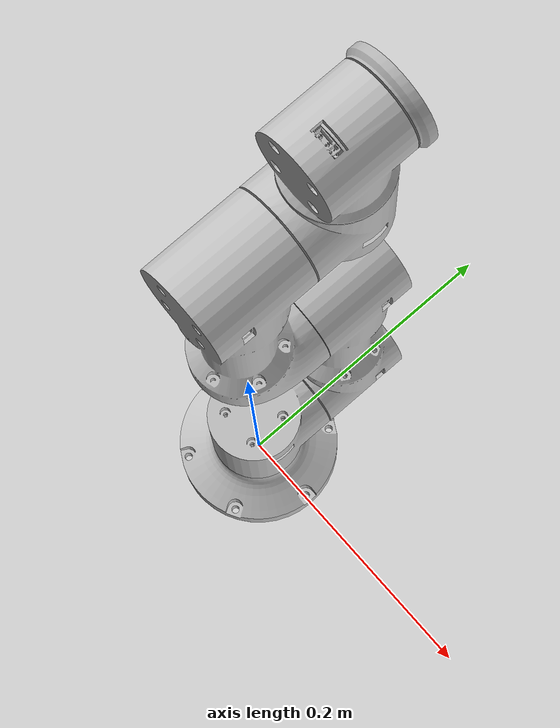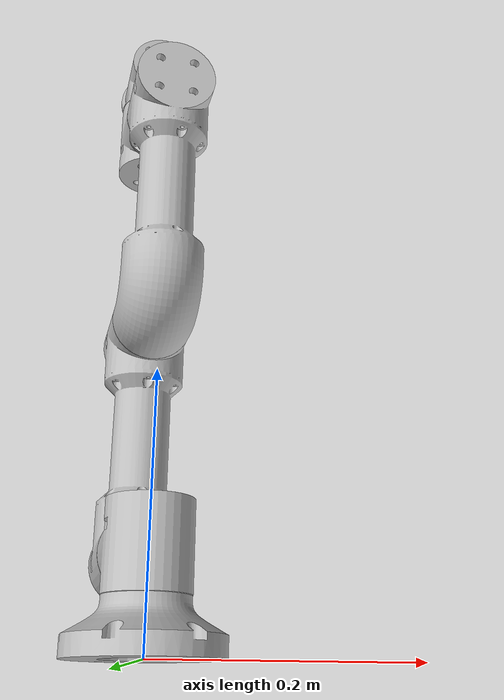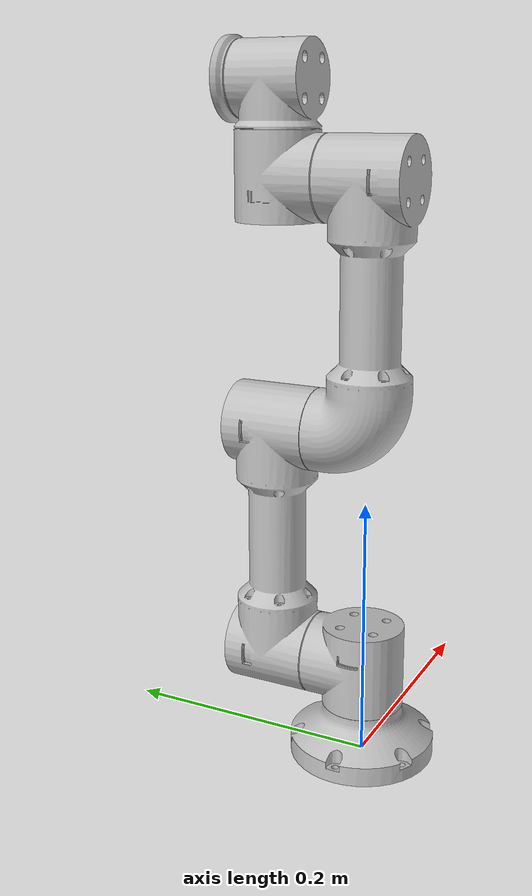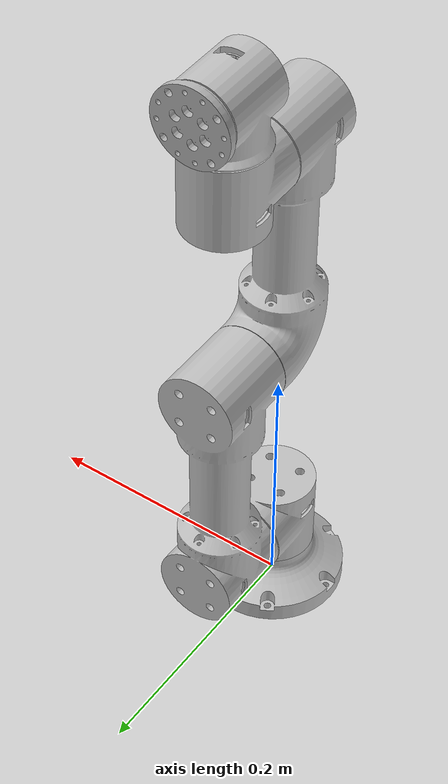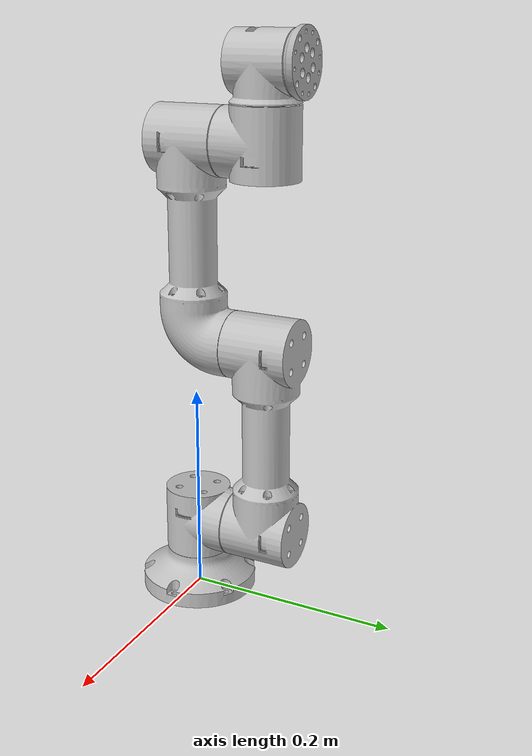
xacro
<?xml version="1.0"?>
<robot xmlns:xacro="http://www.ros.org/wiki/xacro" name="EasyARM-A1">
    <xacro:arg name="initial_positions_file" default="initial_positions.yaml" />
    <xacro:arg name="easyarm_urdf_path" default="$(find easyarm_description)/urdf/easyarm_a1_h0521.urdf" />
    <xacro:arg name="debug_enable" default="false" />
    <xacro:arg name="use_mock_hardware" default="false" />

    <!-- Import EasyARM-A1 urdf file -->
    <xacro:include filename="$(arg easyarm_urdf_path)" />

    <!-- Import control_xacro -->
    <xacro:include filename="EasyARM-A1.ros2_control.xacro" />

    <xacro:EasyARM-A1_ros2_control
        name="EasyArmHardware"
        initial_positions_file="$(arg initial_positions_file)"
        urdf_path="$(arg easyarm_urdf_path)"
        debug_enable="$(arg debug_enable)"
        use_mock_hardware="$(arg use_mock_hardware)"/>

</robot>

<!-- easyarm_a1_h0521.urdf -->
<robot
  name="EasyARM-A1">
  <link
    name="base_link">
    <inertial>
      <origin
        xyz="2.5758E-10 -3.0493E-08 0.016711"
        rpy="0 0 0" />
      <mass
        value="0.24224" />
      <inertia
        ixx="0.00020254"
        ixy="-4.6091E-10"
        ixz="-2.9314E-13"
        iyy="0.00020254"
        iyz="4.519E-10"
        izz="0.00034674" />
    </inertial>
    <visual>
      <origin
        xyz="0 0 0"
        rpy="0 0 0" />
      <geometry>
        <mesh
          filename="package://easyarm_description/meshes/easyarm_h0521/base_link.STL" />
      </geometry>
      <material
        name="">
        <color
          rgba="0.75294 0.75294 0.75294 1" />
      </material>
    </visual>
    <collision>
      <origin
        xyz="0 0 0"
        rpy="0 0 0" />
      <geometry>
        <mesh
          filename="package://easyarm_description/meshes/easyarm_h0521/base_link.STL" />
      </geometry>
    </collision>
  </link>
  <link
    name="Link1">
    <inertial>
      <origin
        xyz="-7.21690131752495E-08 0.00511254917341276 -0.000356624091524357"
        rpy="0 0 0" />
      <mass
        value="0.216945425767562" />
      <inertia
        ixx="0.000122222116503187"
        ixy="5.53681437989864E-09"
        ixz="9.57637913979487E-12"
        iyy="0.000111674739393216"
        iyz="9.05616798141171E-06"
        izz="0.000121338206999658" />
    </inertial>
    <visual>
      <origin
        xyz="0 0 0"
        rpy="0 0 0" />
      <geometry>
        <mesh
          filename="package://easyarm_description/meshes/easyarm_h0521/Link1.STL" />
      </geometry>
      <material
        name="">
        <color
          rgba="0.752941176470588 0.752941176470588 0.752941176470588 1" />
      </material>
    </visual>
    <collision>
      <origin
        xyz="0 0 0"
        rpy="0 0 0" />
      <geometry>
        <mesh
          filename="package://easyarm_description/meshes/easyarm_h0521/Link1.STL" />
      </geometry>
    </collision>
  </link>
  <joint
    name="Joint1"
    type="revolute">
    <origin
      xyz="0 0 0.0734"
      rpy="0 0 0" />
    <parent
      link="base_link" />
    <child
      link="Link1" />
    <axis
      xyz="0 0 -1" />
    <limit
      lower="-3.14"
      upper="3.14"
      effort="14"
      velocity="10.0" />
  </joint>
  <link
    name="Link2">
    <inertial>
      <origin
        xyz="-0.0900001466079373 -1.19272577925322E-10 0.000346086661850387"
        rpy="0 0 0" />
      <mass
        value="0.603194751552504" />
      <inertia
        ixx="0.000305081008734232"
        ixy="-1.14049880301079E-08"
        ixz="1.62033013066951E-09"
        iyy="0.000441332972917462"
        iyz="-3.0081989349051E-12"
        izz="0.00043974892225027" />
    </inertial>
    <visual>
      <origin
        xyz="0 0 0"
        rpy="0 0 0" />
      <geometry>
        <mesh
          filename="package://easyarm_description/meshes/easyarm_h0521/Link2.STL" />
      </geometry>
      <material
        name="">
        <color
          rgba="0.752941176470588 0.752941176470588 0.752941176470588 1" />
      </material>
    </visual>
    <collision>
      <origin
        xyz="0 0 0"
        rpy="0 0 0" />
      <geometry>
        <mesh
          filename="package://easyarm_description/meshes/easyarm_h0521/Link2.STL" />
      </geometry>
    </collision>
  </link>
  <joint
    name="Joint2"
    type="revolute">
    <origin
      xyz="0 0.073 0"
      rpy="-1.5708 1.5708 0" />
    <parent
      link="Link1" />
    <child
      link="Link2" />
    <axis
      xyz="0 0 -1" />
    <limit
      lower="-3.14"
      upper="3.14"
      effort="14"
      velocity="10.0" />
  </joint>
  <link
    name="Link3">
    <inertial>
      <origin
        xyz="-0.105190051004392 3.55921223049727E-09 -0.0712241972170389"
        rpy="0 0 0" />
      <mass
        value="0.520405495271332" />
      <inertia
        ixx="0.000295545673533635"
        ixy="5.5014383773553E-09"
        ixz="-3.06046523464979E-05"
        iyy="0.000424271984084884"
        iyz="-7.78256962184493E-11"
        izz="0.000408163241167388" />
    </inertial>
    <visual>
      <origin
        xyz="0 0 0"
        rpy="0 0 0" />
      <geometry>
        <mesh
          filename="package://easyarm_description/meshes/easyarm_h0521/Link3.STL" />
      </geometry>
      <material
        name="">
        <color
          rgba="0.752941176470588 0.752941176470588 0.752941176470588 1" />
      </material>
    </visual>
    <collision>
      <origin
        xyz="0 0 0"
        rpy="0 0 0" />
      <geometry>
        <mesh
          filename="package://easyarm_description/meshes/easyarm_h0521/Link3.STL" />
      </geometry>
    </collision>
  </link>
  <joint
    name="Joint3"
    type="revolute">
    <origin
      xyz="-0.18 0 0"
      rpy="0 0 0" />
    <parent
      link="Link2" />
    <child
      link="Link3" />
    <axis
      xyz="0 0 1" />
    <limit
      lower="-3.14"
      upper="3.14"
      effort="14"
      velocity="10.0" />
  </joint>
  <link
    name="Link4">
    <inertial>
      <origin
        xyz="-0.000356625278989775 8.17763373892055E-08 -0.0664878530923041"
        rpy="0 0 0" />
      <mass
        value="0.216945440762847" />
      <inertia
        ixx="0.000121338182503669"
        ixy="6.65208368822259E-11"
        ixz="9.05779382020489E-06"
        iyy="0.000122222111877508"
        iyz="5.52779112970944E-09"
        izz="0.000111674732516474" />
    </inertial>
    <visual>
      <origin
        xyz="0 0 0"
        rpy="0 0 0" />
      <geometry>
        <mesh
          filename="package://easyarm_description/meshes/easyarm_h0521/Link4.STL" />
      </geometry>
      <material
        name="">
        <color
          rgba="0.752941176470588 0.752941176470588 0.752941176470588 1" />
      </material>
    </visual>
    <collision>
      <origin
        xyz="0 0 0"
        rpy="0 0 0" />
      <geometry>
        <mesh
          filename="package://easyarm_description/meshes/easyarm_h0521/Link4.STL" />
      </geometry>
    </collision>
  </link>
  <joint
    name="Joint4"
    type="revolute">
    <origin
      xyz="-0.182 0 -0.073"
      rpy="3.1416 0 0" />
    <parent
      link="Link3" />
    <child
      link="Link4" />
    <axis
      xyz="0 0 1" />
    <limit
      lower="-3.14"
      upper="3.14"
      effort="14"
      velocity="10.0" />
  </joint>
  <link
    name="Link5">
    <inertial>
      <origin
        xyz="1.95555779521628E-05 -0.00178155268725853 -0.0601366457896128"
        rpy="0 0 0" />
      <mass
        value="0.124888279561139" />
      <inertia
        ixx="6.41730718145436E-05"
        ixy="1.75318703995971E-08"
        ixz="1.07754540082814E-07"
        iyy="6.93104037102666E-05"
        iyz="-4.0944501597028E-06"
        izz="5.6932382543505E-05" />
    </inertial>
    <visual>
      <origin
        xyz="0 0 0"
        rpy="0 0 0" />
      <geometry>
        <mesh
          filename="package://easyarm_description/meshes/easyarm_h0521/Link5.STL" />
      </geometry>
      <material
        name="">
        <color
          rgba="0.752941176470588 0.752941176470588 0.752941176470588 1" />
      </material>
    </visual>
    <collision>
      <origin
        xyz="0 0 0"
        rpy="0 0 0" />
      <geometry>
        <mesh
          filename="package://easyarm_description/meshes/easyarm_h0521/Link5.STL" />
      </geometry>
    </collision>
  </link>
  <joint
    name="Joint5"
    type="revolute">
    <origin
      xyz="0 0 -0.0716"
      rpy="-1.5708 0 -1.5708" />
    <parent
      link="Link4" />
    <child
      link="Link5" />
    <axis
      xyz="0 0 1" />
    <limit
      lower="-3.14"
      upper="3.14"
      effort="14"
      velocity="10.0" />
  </joint>
  <link
    name="Link6">
    <inertial>
      <origin
        xyz="-1.11022302462516E-16 -9.71445146547012E-17 0.00464068031768159"
        rpy="0 0 0" />
      <mass
        value="0.0271942674179733" />
      <inertia
        ixx="6.16097454689578E-06"
        ixy="-1.2061822248802E-21"
        ixz="-4.55724760093419E-21"
        iyy="6.16097454689578E-06"
        iyz="1.05879118406788E-20"
        izz="1.19367922017072E-05" />
    </inertial>
    <visual>
      <origin
        xyz="0 0 0"
        rpy="0 0 0" />
      <geometry>
        <mesh
          filename="package://easyarm_description/meshes/easyarm_h0521/Link6.STL" />
      </geometry>
      <material
        name="">
        <color
          rgba="0.698039215686274 0.698039215686274 0.698039215686274 1" />
      </material>
    </visual>
    <collision>
      <origin
        xyz="0 0 0"
        rpy="0 0 0" />
      <geometry>
        <mesh
          filename="package://easyarm_description/meshes/easyarm_h0521/Link6.STL" />
      </geometry>
    </collision>
  </link>
  <joint
    name="Joint6"
    type="revolute">
    <origin
      xyz="0 0.0375 -0.067"
      rpy="1.5708 -1.5708 0" />
    <parent
      link="Link5" />
    <child
      link="Link6" />
    <axis
      xyz="0 0 1" />
    <limit
      lower="-3.14"
      upper="3.14"
      effort="6"
      velocity="10.0" />
  </joint>
</robot>
